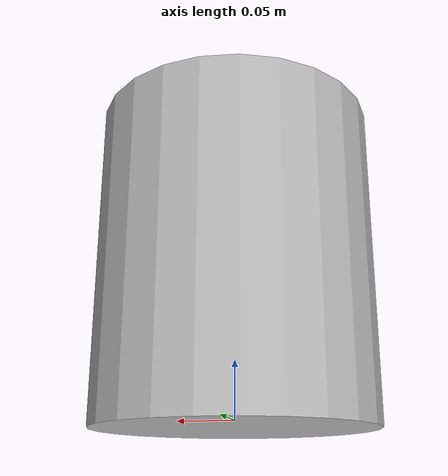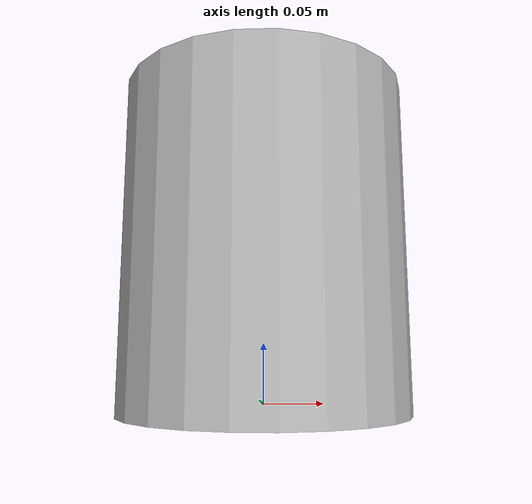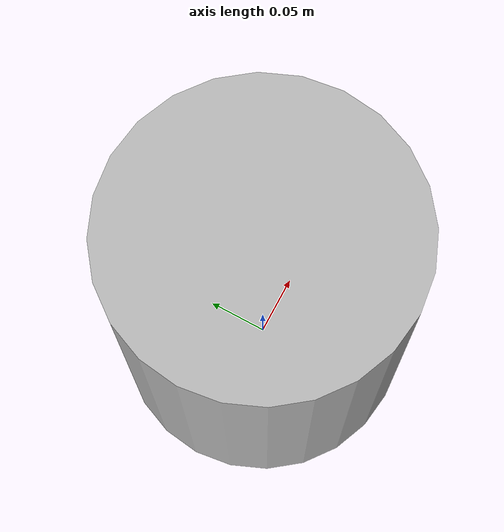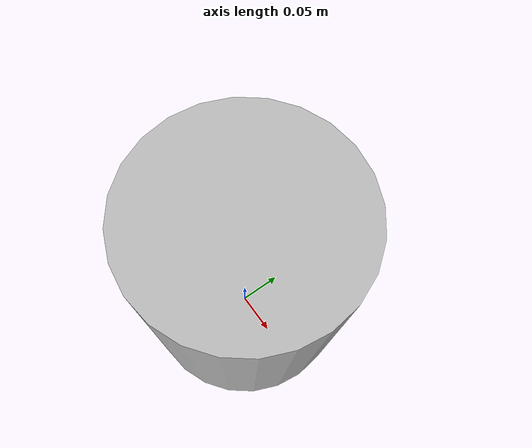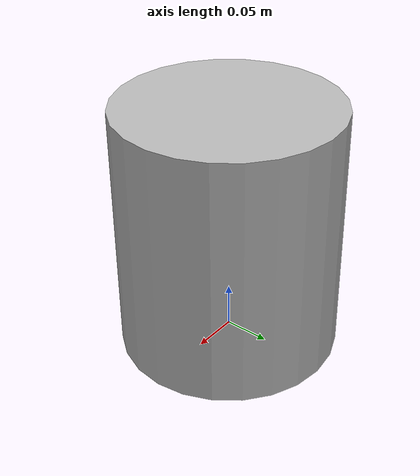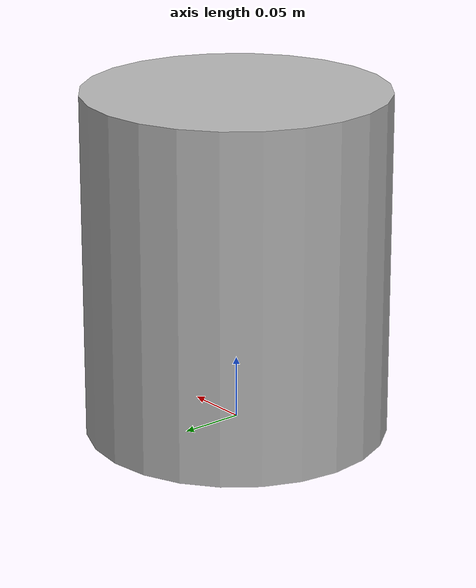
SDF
<?xml version="1.0" ?>
<sdf version="1.6">
  <model name="rwc2023/trashbin">
    <static>true</static>
    <link name="2_link">
      <collision name="2_col">
        <geometry>
            <cylinder>
                <radius>0.12</radius>
                <length>0.275</length>
            </cylinder>
        </geometry>
      </collision>
      <visual name="2_vis">
        <geometry>
            <cylinder>
                <radius>0.12</radius>
                <length>0.275</length>
            </cylinder>
        </geometry>
      </visual>
      <pose>0.0 0.0 0.13 0 0 0</pose>
    </link>
  </model>
</sdf>
